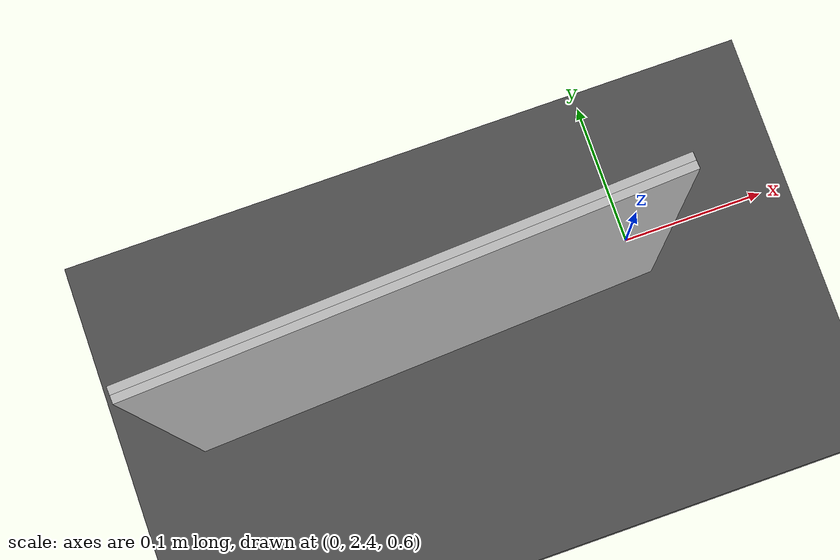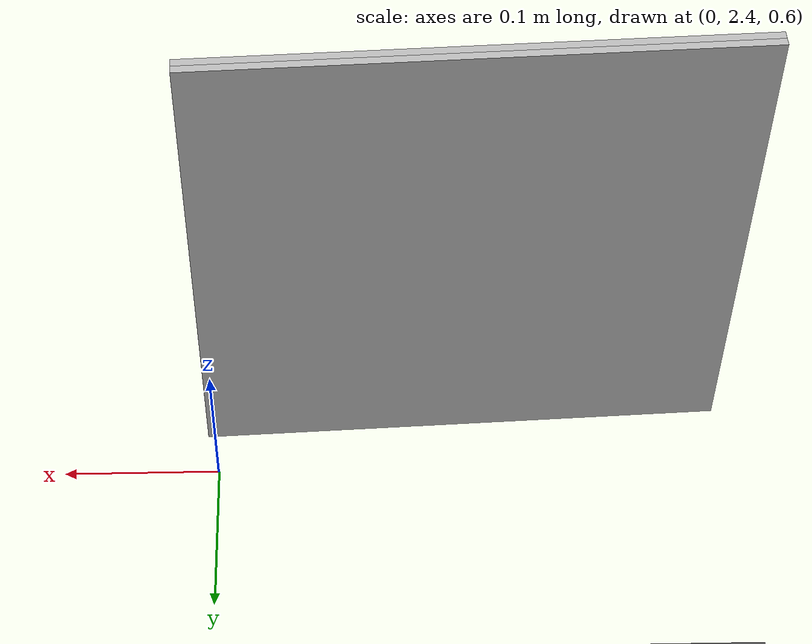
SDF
<sdf version="1.6">
 <world name="default">
  <model name="ground_plane">
   <static>1</static>
   <link name="link">
    <collision name="collision">
     <geometry><plane><normal>0 0 1</normal><size>100 100</size></plane></geometry>
     <surface><friction><ode><mu>100</mu><mu2>50</mu2></ode></friction></surface>
    </collision>
    <visual name="visual">
     <cast_shadows>0</cast_shadows>
     <geometry><plane><normal>0 0 1</normal><size>100 100</size></plane></geometry>
     <material>
      <script><uri>file://media/materials/scripts/gazebo.material</uri><name>Gazebo/Grey</name></script>
     </material>
    </visual>
   </link>
  </model>
  <light name="sun" type="directional">
   <pose>0 0 10 0 -0 0</pose>
   <diffuse>0.8 0.8 0.8 1</diffuse>
   <specular>0.2 0.2 0.2 1</specular>
   <attenuation>
    <range>1000</range>
    <constant>0.9</constant>
    <linear>0.01</linear>
    <quadratic>0.001</quadratic>
   </attenuation>
   <direction>-0.5 0.1 -0.9</direction>
  </light>
  <model name="asphalt">
   <static>1</static>
   <link name="link">
    <collision name="collision"><geometry><box><size>20 20 0.1</size></box></geometry></collision>
    <visual name="visual">
     <cast_shadows>0</cast_shadows>
     <geometry><box><size>20 20 0.1</size></box></geometry>
     <material>
      <script>
       <uri>model://asphalt_plane/materials/scripts</uri>
       <uri>model://asphalt_plane/materials/textures</uri>
       <name>vrc/asphalt</name>
      </script>
     </material>
    </visual>
   </link>
   <pose>2e-06 -0.011309 0 0 -0 0</pose>
  </model>
  <gravity>0 0 -9.8</gravity>
  <magnetic_field>6e-06 2.3e-05 -4.2e-05</magnetic_field>
  <atmosphere type="adiabatic"/>
  <physics name="default_physics" default="0" type="ode">
   <max_step_size>0.001</max_step_size>
   <real_time_factor>1</real_time_factor>
   <real_time_update_rate>1000</real_time_update_rate>
  </physics>
  <scene><ambient>0.4 0.4 0.4 1</ambient><background>0.7 0.7 0.7 1</background><shadows>1</shadows></scene>
  <audio><device>default</device></audio>
  <spherical_coordinates>
   <surface_model>EARTH_WGS84</surface_model>
   <latitude_deg>0</latitude_deg>
   <longitude_deg>0</longitude_deg>
   <elevation>0</elevation>
   <heading_deg>0</heading_deg>
  </spherical_coordinates>
  <model name="Aruco tag0">
   <static>1</static>
   <link name="robot_link">
    <visual name="front_visual">
     <pose>0.0025 0 0 0 -0 0</pose>
     <geometry><box><size>0.005 0.33 0.33</size></box></geometry>
     <material>
      <script><uri>model://tag_0/materials/scripts/tag.material</uri><name>aruco_tag_0</name></script>
     </material>
    </visual>
    <visual name="rear_visual">
     <pose>-0.0025 0 0 0 -0 0</pose>
     <geometry><box><size>0.005 0.33 0.33</size></box></geometry>
    </visual>
   </link>
   <pose>-0.157991 2.36883 0.77915 0 0 -1.52355</pose>
  </model>
 </world>
</sdf>
